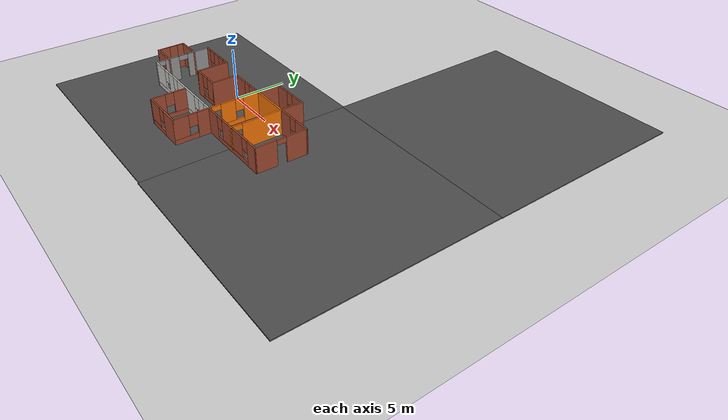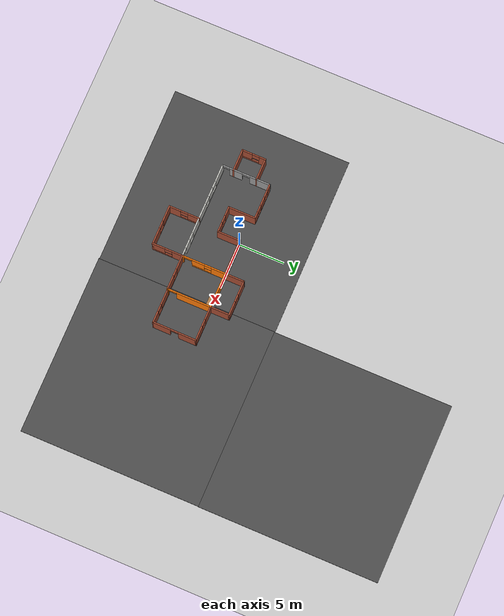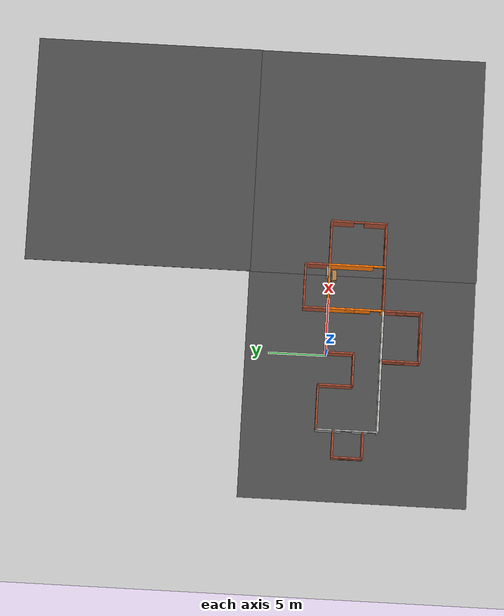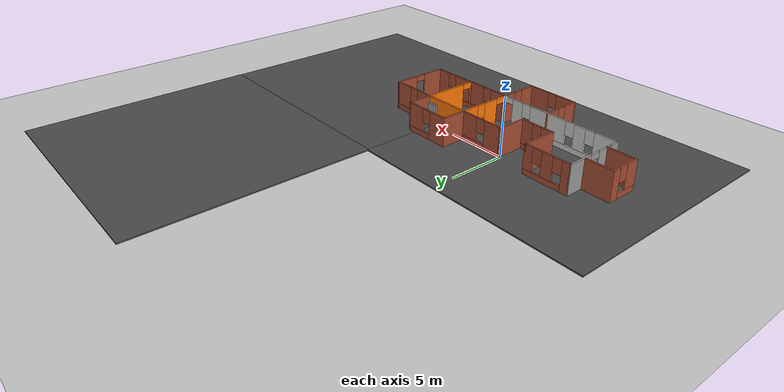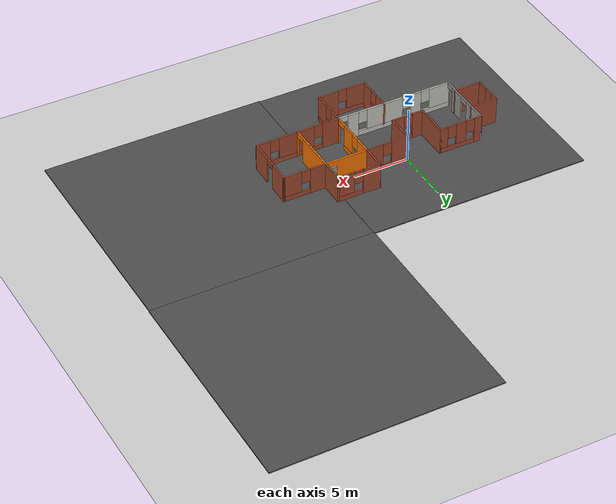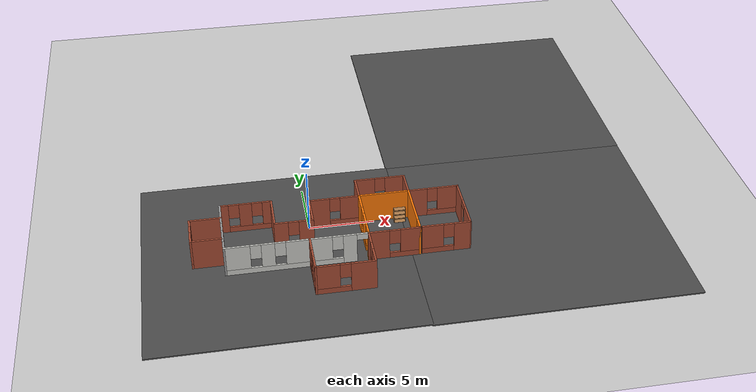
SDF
<sdf version="1.6">
 <world name="default">
  <model name="ground_plane">
   <static>1</static>
   <link name="link">
    <collision name="collision">
     <geometry><plane><normal>0 0 1</normal><size>100 100</size></plane></geometry>
     <surface>
      <contact><collide_bitmask>65535</collide_bitmask></contact>
      <friction><ode><mu>100</mu><mu2>50</mu2></ode></friction>
     </surface>
    </collision>
    <visual name="visual">
     <cast_shadows>0</cast_shadows>
     <geometry><plane><normal>0 0 1</normal><size>100 100</size></plane></geometry>
     <material>
      <script><uri>file://media/materials/scripts/gazebo.material</uri><name>Gazebo/Grey</name></script>
     </material>
    </visual>
   </link>
  </model>
  <model name="Level_1">
   <pose>1.32566 -2.96233 0 0 -0 0</pose>
   <link name="Door_3">
    <collision name="Door_3_Collision">
     <geometry><box><size>0.9 0.17 2</size></box></geometry>
     <pose>0 0 1 0 -0 0</pose>
    </collision>
    <visual name="Door_3_Visual">
     <pose>0 0 1 0 -0 0</pose>
     <geometry><box><size>0.9 0.17 2</size></box></geometry>
     <material>
      <script><uri>file://media/materials/scripts/gazebo.material</uri><name>Gazebo/Grey</name></script>
     </material>
    </visual>
    <pose>5.97774 3.20768 0 0 -0 0</pose>
   </link>
   <link name="Wall_0">
    <pose>-6.00277 3.55 0 0 -0 0</pose>
    <visual name="Wall_0_Visual_0">
     <pose>-1.66505 0 1.25 0 -0 0</pose>
     <geometry><box><size>0.669906 0.15 2.5</size></box></geometry>
     <material>
      <script><uri>file://media/materials/scripts/gazebo.material</uri><name>Gazebo/Bricks</name></script>
      <ambient>1 1 1 1</ambient>
     </material>
     <meta><layer>0</layer></meta>
    </visual>
    <collision name="Wall_0_Collision_0">
     <geometry><box><size>0.669906 0.15 2.5</size></box></geometry>
     <pose>-1.66505 0 1.25 0 -0 0</pose>
    </collision>
    <visual name="Wall_0_Visual_1">
     <pose>0.334953 0 0.25 0 -0 0</pose>
     <geometry><box><size>3.33009 0.15 0.5</size></box></geometry>
     <material>
      <script><uri>file://media/materials/scripts/gazebo.material</uri><name>Gazebo/Bricks</name></script>
      <ambient>1 1 1 1</ambient>
     </material>
     <meta><layer>0</layer></meta>
    </visual>
    <collision name="Wall_0_Collision_1">
     <geometry><box><size>3.33009 0.15 0.5</size></box></geometry>
     <pose>0.334953 0 0.25 0 -0 0</pose>
    </collision>
    <visual name="Wall_0_Visual_2">
     <pose>-0.050625 0 1.5 0 -0 0</pose>
     <geometry><box><size>0.958938 0.15 2</size></box></geometry>
     <material>
      <script><uri>file://media/materials/scripts/gazebo.material</uri><name>Gazebo/Bricks</name></script>
      <ambient>1 1 1 1</ambient>
     </material>
     <meta><layer>0</layer></meta>
    </visual>
    <collision name="Wall_0_Collision_2">
     <geometry><box><size>0.958938 0.15 2</size></box></geometry>
     <pose>-0.050625 0 1.5 0 -0 0</pose>
    </collision>
    <visual name="Wall_0_Visual_3">
     <pose>1.61442 0 1.5 0 -0 0</pose>
     <geometry><box><size>0.771156 0.15 2</size></box></geometry>
     <material>
      <script><uri>file://media/materials/scripts/gazebo.material</uri><name>Gazebo/Bricks</name></script>
      <ambient>1 1 1 1</ambient>
     </material>
     <meta><layer>0</layer></meta>
    </visual>
    <collision name="Wall_0_Collision_3">
     <geometry><box><size>0.771156 0.15 2</size></box></geometry>
     <pose>1.61442 0 1.5 0 -0 0</pose>
    </collision>
    <visual name="Wall_0_Visual_4">
     <pose>-0.930094 0 1.9 0 -0 0</pose>
     <geometry><box><size>0.8 0.15 1.2</size></box></geometry>
     <material>
      <script><uri>file://media/materials/scripts/gazebo.material</uri><name>Gazebo/Bricks</name></script>
      <ambient>1 1 1 1</ambient>
     </material>
     <meta><layer>0</layer></meta>
    </visual>
    <collision name="Wall_0_Collision_4">
     <geometry><box><size>0.8 0.15 1.2</size></box></geometry>
     <pose>-0.930094 0 1.9 0 -0 0</pose>
    </collision>
    <visual name="Wall_0_Visual_5">
     <pose>0.828844 0 1.9 0 -0 0</pose>
     <geometry><box><size>0.8 0.15 1.2</size></box></geometry>
     <material>
      <script><uri>file://media/materials/scripts/gazebo.material</uri><name>Gazebo/Bricks</name></script>
      <ambient>1 1 1 1</ambient>
     </material>
     <meta><layer>0</layer></meta>
    </visual>
    <collision name="Wall_0_Collision_5">
     <geometry><box><size>0.8 0.15 1.2</size></box></geometry>
     <pose>0.828844 0 1.9 0 -0 0</pose>
    </collision>
   </link>
   <link name="Wall_1">
    <collision name="Wall_1_Collision">
     <geometry><box><size>3.121 0.15 2.5</size></box></geometry>
     <pose>0 0 1.25 0 -0 0</pose>
    </collision>
    <visual name="Wall_1_Visual">
     <pose>0 0 1.25 0 -0 0</pose>
     <geometry><box><size>3.121 0.15 2.5</size></box></geometry>
     <material>
      <script><uri>file://media/materials/scripts/gazebo.material</uri><name>Gazebo/Bricks</name></script>
      <ambient>1 1 1 1</ambient>
     </material>
     <meta><layer>0</layer></meta>
    </visual>
    <pose>-4.07777 2.0645 0 0 0 -1.5708</pose>
   </link>
   <link name="Wall_10">
    <pose>-10.3228 0.751 0 0 0 -1.5708</pose>
    <visual name="Wall_10_Visual_0">
     <pose>-0.99483 0 1.25 0 -0 0</pose>
     <geometry><box><size>0.76034 0.15 2.5</size></box></geometry>
     <material>
      <script><uri>file://media/materials/scripts/gazebo.material</uri><name>Gazebo/Bricks</name></script>
      <ambient>1 1 1 1</ambient>
     </material>
     <meta><layer>0</layer></meta>
    </visual>
    <collision name="Wall_10_Collision_0">
     <geometry><box><size>0.76034 0.15 2.5</size></box></geometry>
     <pose>-0.99483 0 1.25 0 -0 0</pose>
    </collision>
    <visual name="Wall_10_Visual_1">
     <pose>0.38017 0 0.25 0 -0 0</pose>
     <geometry><box><size>1.98966 0.15 0.5</size></box></geometry>
     <material>
      <script><uri>file://media/materials/scripts/gazebo.material</uri><name>Gazebo/Bricks</name></script>
      <ambient>1 1 1 1</ambient>
     </material>
     <meta><layer>0</layer></meta>
    </visual>
    <collision name="Wall_10_Collision_1">
     <geometry><box><size>1.98966 0.15 0.5</size></box></geometry>
     <pose>0.38017 0 0.25 0 -0 0</pose>
    </collision>
    <visual name="Wall_10_Visual_2">
     <pose>0.78017 0 1.5 0 -0 0</pose>
     <geometry><box><size>1.18966 0.15 2</size></box></geometry>
     <material>
      <script><uri>file://media/materials/scripts/gazebo.material</uri><name>Gazebo/Bricks</name></script>
      <ambient>1 1 1 1</ambient>
     </material>
     <meta><layer>0</layer></meta>
    </visual>
    <collision name="Wall_10_Collision_2">
     <geometry><box><size>1.18966 0.15 2</size></box></geometry>
     <pose>0.78017 0 1.5 0 -0 0</pose>
    </collision>
    <visual name="Wall_10_Visual_3">
     <pose>-0.21466 0 1.9 0 -0 0</pose>
     <geometry><box><size>0.8 0.15 1.2</size></box></geometry>
     <material>
      <script><uri>file://media/materials/scripts/gazebo.material</uri><name>Gazebo/Bricks</name></script>
      <ambient>1 1 1 1</ambient>
     </material>
     <meta><layer>0</layer></meta>
    </visual>
    <collision name="Wall_10_Collision_3">
     <geometry><box><size>0.8 0.15 1.2</size></box></geometry>
     <pose>-0.21466 0 1.9 0 -0 0</pose>
    </collision>
   </link>
   <link name="Wall_11">
    <collision name="Wall_11_Collision">
     <geometry><box><size>2.5 0.15 2.5</size></box></geometry>
     <pose>0 0 1.25 0 -0 0</pose>
    </collision>
    <visual name="Wall_11_Visual">
     <pose>0 0 1.25 0 -0 0</pose>
     <geometry><box><size>2.5 0.15 2.5</size></box></geometry>
     <material>
      <script><uri>file://media/materials/scripts/gazebo.material</uri><name>Gazebo/Bricks</name></script>
      <ambient>1 1 1 1</ambient>
     </material>
     <meta><layer>0</layer></meta>
    </visual>
    <pose>-9.14777 -0.549 0 0 -0 0</pose>
   </link>
   <link name="Wall_13">
    <pose>4.54723 -1.8 0 0 -0 0</pose>
    <visual name="Wall_13_Visual_0">
     <pose>-1.18832 0 1.25 0 -0 0</pose>
     <geometry><box><size>1.62336 0.15 2.5</size></box></geometry>
     <material>
      <script><uri>file://media/materials/scripts/gazebo.material</uri><name>Gazebo/Bricks</name></script>
      <ambient>1 1 1 1</ambient>
     </material>
     <meta><layer>0</layer></meta>
    </visual>
    <collision name="Wall_13_Collision_0">
     <geometry><box><size>1.62336 0.15 2.5</size></box></geometry>
     <pose>-1.18832 0 1.25 0 -0 0</pose>
    </collision>
    <visual name="Wall_13_Visual_1">
     <pose>0.811681 0 0.25 0 -0 0</pose>
     <geometry><box><size>2.37664 0.15 0.5</size></box></geometry>
     <material>
      <script><uri>file://media/materials/scripts/gazebo.material</uri><name>Gazebo/Bricks</name></script>
      <ambient>1 1 1 1</ambient>
     </material>
     <meta><layer>0</layer></meta>
    </visual>
    <collision name="Wall_13_Collision_1">
     <geometry><box><size>2.37664 0.15 0.5</size></box></geometry>
     <pose>0.811681 0 0.25 0 -0 0</pose>
    </collision>
    <visual name="Wall_13_Visual_2">
     <pose>1.21168 0 1.5 0 -0 0</pose>
     <geometry><box><size>1.57664 0.15 2</size></box></geometry>
     <material>
      <script><uri>file://media/materials/scripts/gazebo.material</uri><name>Gazebo/Bricks</name></script>
      <ambient>1 1 1 1</ambient>
     </material>
     <meta><layer>0</layer></meta>
    </visual>
    <collision name="Wall_13_Collision_2">
     <geometry><box><size>1.57664 0.15 2</size></box></geometry>
     <pose>1.21168 0 1.5 0 -0 0</pose>
    </collision>
    <visual name="Wall_13_Visual_3">
     <pose>0.023361 0 1.9 0 -0 0</pose>
     <geometry><box><size>0.8 0.15 1.2</size></box></geometry>
     <material>
      <script><uri>file://media/materials/scripts/gazebo.material</uri><name>Gazebo/Bricks</name></script>
      <ambient>1 1 1 1</ambient>
     </material>
     <meta><layer>0</layer></meta>
    </visual>
    <collision name="Wall_13_Collision_3">
     <geometry><box><size>0.8 0.15 1.2</size></box></geometry>
     <pose>0.023361 0 1.9 0 -0 0</pose>
    </collision>
   </link>
   <link name="Wall_14">
    <pose>6.47223 0.625 0 0 -0 1.5708</pose>
    <visual name="Wall_14_Visual_0">
     <pose>-2.39992 0 1.25 0 -0 0</pose>
     <geometry><box><size>0.200158 0.15 2.5</size></box></geometry>
     <material>
      <script><uri>file://media/materials/scripts/gazebo.material</uri><name>Gazebo/Grey</name></script>
      <ambient>0.996078 0.47451 0.0196078 1</ambient>
     </material>
     <meta><layer>0</layer></meta>
    </visual>
    <collision name="Wall_14_Collision_0">
     <geometry><box><size>0.200158 0.15 2.5</size></box></geometry>
     <pose>-2.39992 0 1.25 0 -0 0</pose>
    </collision>
    <visual name="Wall_14_Visual_1">
     <pose>0.550079 0 1.25 0 -0 0</pose>
     <geometry><box><size>3.89984 0.15 2.5</size></box></geometry>
     <material>
      <script><uri>file://media/materials/scripts/gazebo.material</uri><name>Gazebo/Grey</name></script>
      <ambient>0.996078 0.47451 0.0196078 1</ambient>
     </material>
     <meta><layer>0</layer></meta>
    </visual>
    <collision name="Wall_14_Collision_1">
     <geometry><box><size>3.89984 0.15 2.5</size></box></geometry>
     <pose>0.550079 0 1.25 0 -0 0</pose>
    </collision>
    <visual name="Wall_14_Visual_2">
     <pose>-1.84984 0 2.25 0 -0 0</pose>
     <geometry><box><size>0.9 0.15 0.5</size></box></geometry>
     <material>
      <script><uri>file://media/materials/scripts/gazebo.material</uri><name>Gazebo/Grey</name></script>
      <ambient>0.996078 0.47451 0.0196078 1</ambient>
     </material>
     <meta><layer>0</layer></meta>
    </visual>
    <collision name="Wall_14_Collision_2">
     <geometry><box><size>0.9 0.15 0.5</size></box></geometry>
     <pose>-1.84984 0 2.25 0 -0 0</pose>
    </collision>
   </link>
   <link name="Wall_15">
    <collision name="Wall_15_Collision">
     <geometry><box><size>4 0.15 2.5</size></box></geometry>
     <pose>0 0 1.25 0 -0 0</pose>
    </collision>
    <visual name="Wall_15_Visual">
     <pose>0 0 1.25 0 -0 0</pose>
     <geometry><box><size>4 0.15 2.5</size></box></geometry>
     <material>
      <script><uri>file://media/materials/scripts/gazebo.material</uri><name>Gazebo/Grey</name></script>
      <ambient>0.996078 0.47451 0.0196078 1</ambient>
     </material>
     <meta><layer>0</layer></meta>
    </visual>
    <pose>4.54723 3.05 0 0 -0 3.14159</pose>
   </link>
   <link name="Wall_16">
    <collision name="Wall_16_Collision">
     <geometry><box><size>2.25 0.15 2.5</size></box></geometry>
     <pose>0 0 1.25 0 -0 0</pose>
    </collision>
    <visual name="Wall_16_Visual">
     <pose>0 0 1.25 0 -0 0</pose>
     <geometry><box><size>2.25 0.15 2.5</size></box></geometry>
     <material>
      <script><uri>file://media/materials/scripts/gazebo.material</uri><name>Gazebo/Bricks</name></script>
      <ambient>1 1 1 1</ambient>
     </material>
     <meta><layer>0</layer></meta>
    </visual>
    <pose>2.62223 4.1 0 0 -0 1.5708</pose>
   </link>
   <link name="Wall_17">
    <pose>4.54723 5.15 0 0 -0 0</pose>
    <visual name="Wall_17_Visual_0">
     <pose>-1.18832 0 1.25 0 -0 0</pose>
     <geometry><box><size>1.62336 0.15 2.5</size></box></geometry>
     <material>
      <script><uri>file://media/materials/scripts/gazebo.material</uri><name>Gazebo/Bricks</name></script>
      <ambient>1 1 1 1</ambient>
     </material>
     <meta><layer>0</layer></meta>
    </visual>
    <collision name="Wall_17_Collision_0">
     <geometry><box><size>1.62336 0.15 2.5</size></box></geometry>
     <pose>-1.18832 0 1.25 0 -0 0</pose>
    </collision>
    <visual name="Wall_17_Visual_1">
     <pose>0.811681 0 0.25 0 -0 0</pose>
     <geometry><box><size>2.37664 0.15 0.5</size></box></geometry>
     <material>
      <script><uri>file://media/materials/scripts/gazebo.material</uri><name>Gazebo/Bricks</name></script>
      <ambient>1 1 1 1</ambient>
     </material>
     <meta><layer>0</layer></meta>
    </visual>
    <collision name="Wall_17_Collision_1">
     <geometry><box><size>2.37664 0.15 0.5</size></box></geometry>
     <pose>0.811681 0 0.25 0 -0 0</pose>
    </collision>
    <visual name="Wall_17_Visual_2">
     <pose>1.21168 0 1.5 0 -0 0</pose>
     <geometry><box><size>1.57664 0.15 2</size></box></geometry>
     <material>
      <script><uri>file://media/materials/scripts/gazebo.material</uri><name>Gazebo/Bricks</name></script>
      <ambient>1 1 1 1</ambient>
     </material>
     <meta><layer>0</layer></meta>
    </visual>
    <collision name="Wall_17_Collision_2">
     <geometry><box><size>1.57664 0.15 2</size></box></geometry>
     <pose>1.21168 0 1.5 0 -0 0</pose>
    </collision>
    <visual name="Wall_17_Visual_3">
     <pose>0.023361 0 1.9 0 -0 0</pose>
     <geometry><box><size>0.8 0.15 1.2</size></box></geometry>
     <material>
      <script><uri>file://media/materials/scripts/gazebo.material</uri><name>Gazebo/Bricks</name></script>
      <ambient>1 1 1 1</ambient>
     </material>
     <meta><layer>0</layer></meta>
    </visual>
    <collision name="Wall_17_Collision_3">
     <geometry><box><size>0.8 0.15 1.2</size></box></geometry>
     <pose>0.023361 0 1.9 0 -0 0</pose>
    </collision>
   </link>
   <link name="Wall_18">
    <collision name="Wall_18_Collision">
     <geometry><box><size>2.25 0.15 2.5</size></box></geometry>
     <pose>0 0 1.25 0 -0 0</pose>
    </collision>
    <visual name="Wall_18_Visual">
     <pose>0 0 1.25 0 -0 0</pose>
     <geometry><box><size>2.25 0.15 2.5</size></box></geometry>
     <material>
      <script><uri>file://media/materials/scripts/gazebo.material</uri><name>Gazebo/Bricks</name></script>
      <ambient>1 1 1 1</ambient>
     </material>
     <meta><layer>0</layer></meta>
    </visual>
    <pose>6.47223 4.1 0 0 0 -1.5708</pose>
   </link>
   <link name="Wall_2">
    <pose>-2.65277 0.579 0 0 -0 0</pose>
    <visual name="Wall_2_Visual_0">
     <pose>-0.961732 0 1.25 0 -0 0</pose>
     <geometry><box><size>1.07654 0.15 2.5</size></box></geometry>
     <material>
      <script><uri>file://media/materials/scripts/gazebo.material</uri><name>Gazebo/Bricks</name></script>
      <ambient>1 1 1 1</ambient>
     </material>
     <meta><layer>0</layer></meta>
    </visual>
    <collision name="Wall_2_Collision_0">
     <geometry><box><size>1.07654 0.15 2.5</size></box></geometry>
     <pose>-0.961732 0 1.25 0 -0 0</pose>
    </collision>
    <visual name="Wall_2_Visual_1">
     <pose>0.538268 0 0.25 0 -0 0</pose>
     <geometry><box><size>1.92346 0.15 0.5</size></box></geometry>
     <material>
      <script><uri>file://media/materials/scripts/gazebo.material</uri><name>Gazebo/Bricks</name></script>
      <ambient>1 1 1 1</ambient>
     </material>
     <meta><layer>0</layer></meta>
    </visual>
    <collision name="Wall_2_Collision_1">
     <geometry><box><size>1.92346 0.15 0.5</size></box></geometry>
     <pose>0.538268 0 0.25 0 -0 0</pose>
    </collision>
    <visual name="Wall_2_Visual_2">
     <pose>0.938268 0 1.5 0 -0 0</pose>
     <geometry><box><size>1.12346 0.15 2</size></box></geometry>
     <material>
      <script><uri>file://media/materials/scripts/gazebo.material</uri><name>Gazebo/Bricks</name></script>
      <ambient>1 1 1 1</ambient>
     </material>
     <meta><layer>0</layer></meta>
    </visual>
    <collision name="Wall_2_Collision_2">
     <geometry><box><size>1.12346 0.15 2</size></box></geometry>
     <pose>0.938268 0 1.5 0 -0 0</pose>
    </collision>
    <visual name="Wall_2_Visual_3">
     <pose>-0.023464 0 1.9 0 -0 0</pose>
     <geometry><box><size>0.8 0.15 1.2</size></box></geometry>
     <material>
      <script><uri>file://media/materials/scripts/gazebo.material</uri><name>Gazebo/Bricks</name></script>
      <ambient>1 1 1 1</ambient>
     </material>
     <meta><layer>0</layer></meta>
    </visual>
    <collision name="Wall_2_Collision_3">
     <geometry><box><size>0.8 0.15 1.2</size></box></geometry>
     <pose>-0.023464 0 1.9 0 -0 0</pose>
    </collision>
   </link>
   <link name="Wall_20">
    <pose>2.62223 -3.475 0 0 0 -1.5708</pose>
    <visual name="Wall_20_Visual_0">
     <pose>-1.12713 0 1.25 0 -0 0</pose>
     <geometry><box><size>1.24575 0.15 2.5</size></box></geometry>
     <material>
      <script><uri>file://media/materials/scripts/gazebo.material</uri><name>Gazebo/Bricks</name></script>
      <ambient>1 1 1 1</ambient>
     </material>
     <meta><layer>0</layer></meta>
    </visual>
    <collision name="Wall_20_Collision_0">
     <geometry><box><size>1.24575 0.15 2.5</size></box></geometry>
     <pose>-1.12713 0 1.25 0 -0 0</pose>
    </collision>
    <visual name="Wall_20_Visual_1">
     <pose>0.622873 0 0.25 0 -0 0</pose>
     <geometry><box><size>2.25425 0.15 0.5</size></box></geometry>
     <material>
      <script><uri>file://media/materials/scripts/gazebo.material</uri><name>Gazebo/Bricks</name></script>
      <ambient>1 1 1 1</ambient>
     </material>
     <meta><layer>0</layer></meta>
    </visual>
    <collision name="Wall_20_Collision_1">
     <geometry><box><size>2.25425 0.15 0.5</size></box></geometry>
     <pose>0.622873 0 0.25 0 -0 0</pose>
    </collision>
    <visual name="Wall_20_Visual_2">
     <pose>1.02287 0 1.5 0 -0 0</pose>
     <geometry><box><size>1.45425 0.15 2</size></box></geometry>
     <material>
      <script><uri>file://media/materials/scripts/gazebo.material</uri><name>Gazebo/Bricks</name></script>
      <ambient>1 1 1 1</ambient>
     </material>
     <meta><layer>0</layer></meta>
    </visual>
    <collision name="Wall_20_Collision_2">
     <geometry><box><size>1.45425 0.15 2</size></box></geometry>
     <pose>1.02287 0 1.5 0 -0 0</pose>
    </collision>
    <visual name="Wall_20_Visual_3">
     <pose>-0.104254 0 1.9 0 -0 0</pose>
     <geometry><box><size>0.8 0.15 1.2</size></box></geometry>
     <material>
      <script><uri>file://media/materials/scripts/gazebo.material</uri><name>Gazebo/Bricks</name></script>
      <ambient>1 1 1 1</ambient>
     </material>
     <meta><layer>0</layer></meta>
    </visual>
    <collision name="Wall_20_Collision_3">
     <geometry><box><size>0.8 0.15 1.2</size></box></geometry>
     <pose>-0.104254 0 1.9 0 -0 0</pose>
    </collision>
   </link>
   <link name="Wall_21">
    <pose>0.447228 -5.15 0 0 -0 3.14159</pose>
    <visual name="Wall_21_Visual_0">
     <pose>-1.31113 0 1.25 0 -0 0</pose>
     <geometry><box><size>1.87773 0.15 2.5</size></box></geometry>
     <material>
      <script><uri>file://media/materials/scripts/gazebo.material</uri><name>Gazebo/Bricks</name></script>
      <ambient>1 1 1 1</ambient>
     </material>
     <meta><layer>0</layer></meta>
    </visual>
    <collision name="Wall_21_Collision_0">
     <geometry><box><size>1.87773 0.15 2.5</size></box></geometry>
     <pose>-1.31113 0 1.25 0 -0 0</pose>
    </collision>
    <visual name="Wall_21_Visual_1">
     <pose>0.938867 0 0.25 0 -0 0</pose>
     <geometry><box><size>2.62227 0.15 0.5</size></box></geometry>
     <material>
      <script><uri>file://media/materials/scripts/gazebo.material</uri><name>Gazebo/Bricks</name></script>
      <ambient>1 1 1 1</ambient>
     </material>
     <meta><layer>0</layer></meta>
    </visual>
    <collision name="Wall_21_Collision_1">
     <geometry><box><size>2.62227 0.15 0.5</size></box></geometry>
     <pose>0.938867 0 0.25 0 -0 0</pose>
    </collision>
    <visual name="Wall_21_Visual_2">
     <pose>1.33887 0 1.5 0 -0 0</pose>
     <geometry><box><size>1.82227 0.15 2</size></box></geometry>
     <material>
      <script><uri>file://media/materials/scripts/gazebo.material</uri><name>Gazebo/Bricks</name></script>
      <ambient>1 1 1 1</ambient>
     </material>
     <meta><layer>0</layer></meta>
    </visual>
    <collision name="Wall_21_Collision_2">
     <geometry><box><size>1.82227 0.15 2</size></box></geometry>
     <pose>1.33887 0 1.5 0 -0 0</pose>
    </collision>
    <visual name="Wall_21_Visual_3">
     <pose>0.027733 0 1.9 0 -0 0</pose>
     <geometry><box><size>0.8 0.15 1.2</size></box></geometry>
     <material>
      <script><uri>file://media/materials/scripts/gazebo.material</uri><name>Gazebo/Bricks</name></script>
      <ambient>1 1 1 1</ambient>
     </material>
     <meta><layer>0</layer></meta>
    </visual>
    <collision name="Wall_21_Collision_3">
     <geometry><box><size>0.8 0.15 1.2</size></box></geometry>
     <pose>0.027733 0 1.9 0 -0 0</pose>
    </collision>
   </link>
   <link name="Wall_22">
    <pose>-1.72777 -3.475 0 0 -0 1.5708</pose>
    <visual name="Wall_22_Visual_0">
     <pose>-1.07564 0 1.25 0 -0 0</pose>
     <geometry><box><size>1.34872 0.15 2.5</size></box></geometry>
     <material>
      <script><uri>file://media/materials/scripts/gazebo.material</uri><name>Gazebo/Bricks</name></script>
      <ambient>1 1 1 1</ambient>
     </material>
     <meta><layer>0</layer></meta>
    </visual>
    <collision name="Wall_22_Collision_0">
     <geometry><box><size>1.34872 0.15 2.5</size></box></geometry>
     <pose>-1.07564 0 1.25 0 -0 0</pose>
    </collision>
    <visual name="Wall_22_Visual_1">
     <pose>0.674359 0 0.25 0 -0 0</pose>
     <geometry><box><size>2.15128 0.15 0.5</size></box></geometry>
     <material>
      <script><uri>file://media/materials/scripts/gazebo.material</uri><name>Gazebo/Bricks</name></script>
      <ambient>1 1 1 1</ambient>
     </material>
     <meta><layer>0</layer></meta>
    </visual>
    <collision name="Wall_22_Collision_1">
     <geometry><box><size>2.15128 0.15 0.5</size></box></geometry>
     <pose>0.674359 0 0.25 0 -0 0</pose>
    </collision>
    <visual name="Wall_22_Visual_2">
     <pose>1.07436 0 1.5 0 -0 0</pose>
     <geometry><box><size>1.35128 0.15 2</size></box></geometry>
     <material>
      <script><uri>file://media/materials/scripts/gazebo.material</uri><name>Gazebo/Bricks</name></script>
      <ambient>1 1 1 1</ambient>
     </material>
     <meta><layer>0</layer></meta>
    </visual>
    <collision name="Wall_22_Collision_2">
     <geometry><box><size>1.35128 0.15 2</size></box></geometry>
     <pose>1.07436 0 1.5 0 -0 0</pose>
    </collision>
    <visual name="Wall_22_Visual_3">
     <pose>-0.001282 0 1.9 0 -0 0</pose>
     <geometry><box><size>0.8 0.15 1.2</size></box></geometry>
     <material>
      <script><uri>file://media/materials/scripts/gazebo.material</uri><name>Gazebo/Bricks</name></script>
      <ambient>1 1 1 1</ambient>
     </material>
     <meta><layer>0</layer></meta>
    </visual>
    <collision name="Wall_22_Collision_3">
     <geometry><box><size>0.8 0.15 1.2</size></box></geometry>
     <pose>-0.001282 0 1.9 0 -0 0</pose>
    </collision>
   </link>
   <link name="Wall_24">
    <pose>8.39723 3.05 0 0 -0 0</pose>
    <visual name="Wall_24_Visual_0">
     <pose>-1.23126 0 1.25 0 -0 0</pose>
     <geometry><box><size>1.53749 0.15 2.5</size></box></geometry>
     <material>
      <script><uri>file://media/materials/scripts/gazebo.material</uri><name>Gazebo/Bricks</name></script>
      <ambient>1 1 1 1</ambient>
     </material>
     <meta><layer>0</layer></meta>
    </visual>
    <collision name="Wall_24_Collision_0">
     <geometry><box><size>1.53749 0.15 2.5</size></box></geometry>
     <pose>-1.23126 0 1.25 0 -0 0</pose>
    </collision>
    <visual name="Wall_24_Visual_1">
     <pose>0.768744 0 0.25 0 -0 0</pose>
     <geometry><box><size>2.46251 0.15 0.5</size></box></geometry>
     <material>
      <script><uri>file://media/materials/scripts/gazebo.material</uri><name>Gazebo/Bricks</name></script>
      <ambient>1 1 1 1</ambient>
     </material>
     <meta><layer>0</layer></meta>
    </visual>
    <collision name="Wall_24_Collision_1">
     <geometry><box><size>2.46251 0.15 0.5</size></box></geometry>
     <pose>0.768744 0 0.25 0 -0 0</pose>
    </collision>
    <visual name="Wall_24_Visual_2">
     <pose>1.16874 0 1.5 0 -0 0</pose>
     <geometry><box><size>1.66251 0.15 2</size></box></geometry>
     <material>
      <script><uri>file://media/materials/scripts/gazebo.material</uri><name>Gazebo/Bricks</name></script>
      <ambient>1 1 1 1</ambient>
     </material>
     <meta><layer>0</layer></meta>
    </visual>
    <collision name="Wall_24_Collision_2">
     <geometry><box><size>1.66251 0.15 2</size></box></geometry>
     <pose>1.16874 0 1.5 0 -0 0</pose>
    </collision>
    <visual name="Wall_24_Visual_3">
     <pose>-0.062511 0 1.9 0 -0 0</pose>
     <geometry><box><size>0.8 0.15 1.2</size></box></geometry>
     <material>
      <script><uri>file://media/materials/scripts/gazebo.material</uri><name>Gazebo/Bricks</name></script>
      <ambient>1 1 1 1</ambient>
     </material>
     <meta><layer>0</layer></meta>
    </visual>
    <collision name="Wall_24_Collision_3">
     <geometry><box><size>0.8 0.15 1.2</size></box></geometry>
     <pose>-0.062511 0 1.9 0 -0 0</pose>
    </collision>
   </link>
   <link name="Wall_25">
    <pose>10.3047 0.6445 0 0 0 -1.57807</pose>
    <visual name="Wall_25_Visual_0">
     <pose>-1.46301 0 1.25 0 -0 0</pose>
     <geometry><box><size>2.03517 0.15 2.5</size></box></geometry>
     <material>
      <script><uri>file://media/materials/scripts/gazebo.material</uri><name>Gazebo/Bricks</name></script>
      <ambient>1 1 1 1</ambient>
     </material>
     <meta><layer>0</layer></meta>
    </visual>
    <collision name="Wall_25_Collision_0">
     <geometry><box><size>2.03517 0.15 2.5</size></box></geometry>
     <pose>-1.46301 0 1.25 0 -0 0</pose>
    </collision>
    <visual name="Wall_25_Visual_1">
     <pose>1.46759 0 1.25 0 -0 0</pose>
     <geometry><box><size>2.02603 0.15 2.5</size></box></geometry>
     <material>
      <script><uri>file://media/materials/scripts/gazebo.material</uri><name>Gazebo/Bricks</name></script>
      <ambient>1 1 1 1</ambient>
     </material>
     <meta><layer>0</layer></meta>
    </visual>
    <collision name="Wall_25_Collision_1">
     <geometry><box><size>2.02603 0.15 2.5</size></box></geometry>
     <pose>1.46759 0 1.25 0 -0 0</pose>
    </collision>
    <visual name="Wall_25_Visual_2">
     <pose>0.004573 0 2.25 0 -0 0</pose>
     <geometry><box><size>0.9 0.15 0.5</size></box></geometry>
     <material>
      <script><uri>file://media/materials/scripts/gazebo.material</uri><name>Gazebo/Bricks</name></script>
      <ambient>1 1 1 1</ambient>
     </material>
     <meta><layer>0</layer></meta>
    </visual>
    <collision name="Wall_25_Collision_2">
     <geometry><box><size>0.9 0.15 0.5</size></box></geometry>
     <pose>0.004573 0 2.25 0 -0 0</pose>
    </collision>
   </link>
   <link name="Wall_26">
    <pose>8.48723 -1.761 0 0 -0 3.14159</pose>
    <visual name="Wall_26_Visual_0">
     <pose>-1.21964 0 1.25 0 -0 0</pose>
     <geometry><box><size>1.31072 0.15 2.5</size></box></geometry>
     <material>
      <script><uri>file://media/materials/scripts/gazebo.material</uri><name>Gazebo/Bricks</name></script>
      <ambient>1 1 1 1</ambient>
     </material>
     <meta><layer>0</layer></meta>
    </visual>
    <collision name="Wall_26_Collision_0">
     <geometry><box><size>1.31072 0.15 2.5</size></box></geometry>
     <pose>-1.21964 0 1.25 0 -0 0</pose>
    </collision>
    <visual name="Wall_26_Visual_1">
     <pose>0.655361 0 0.25 0 -0 0</pose>
     <geometry><box><size>2.43928 0.15 0.5</size></box></geometry>
     <material>
      <script><uri>file://media/materials/scripts/gazebo.material</uri><name>Gazebo/Bricks</name></script>
      <ambient>1 1 1 1</ambient>
     </material>
     <meta><layer>0</layer></meta>
    </visual>
    <collision name="Wall_26_Collision_1">
     <geometry><box><size>2.43928 0.15 0.5</size></box></geometry>
     <pose>0.655361 0 0.25 0 -0 0</pose>
    </collision>
    <visual name="Wall_26_Visual_2">
     <pose>1.05536 0 1.5 0 -0 0</pose>
     <geometry><box><size>1.63928 0.15 2</size></box></geometry>
     <material>
      <script><uri>file://media/materials/scripts/gazebo.material</uri><name>Gazebo/Bricks</name></script>
      <ambient>1 1 1 1</ambient>
     </material>
     <meta><layer>0</layer></meta>
    </visual>
    <collision name="Wall_26_Collision_2">
     <geometry><box><size>1.63928 0.15 2</size></box></geometry>
     <pose>1.05536 0 1.5 0 -0 0</pose>
    </collision>
    <visual name="Wall_26_Visual_3">
     <pose>-0.164277 0 1.9 0 -0 0</pose>
     <geometry><box><size>0.8 0.15 1.2</size></box></geometry>
     <material>
      <script><uri>file://media/materials/scripts/gazebo.material</uri><name>Gazebo/Bricks</name></script>
      <ambient>1 1 1 1</ambient>
     </material>
     <meta><layer>0</layer></meta>
    </visual>
    <collision name="Wall_26_Collision_3">
     <geometry><box><size>0.8 0.15 1.2</size></box></geometry>
     <pose>-0.164277 0 1.9 0 -0 0</pose>
    </collision>
   </link>
   <link name="Wall_3">
    <collision name="Wall_3_Collision">
     <geometry><box><size>2.621 0.15 2.5</size></box></geometry>
     <pose>0 0 1.25 0 -0 0</pose>
    </collision>
    <visual name="Wall_3_Visual">
     <pose>0 0 1.25 0 -0 0</pose>
     <geometry><box><size>2.621 0.15 2.5</size></box></geometry>
     <material>
      <script><uri>file://media/materials/scripts/gazebo.material</uri><name>Gazebo/Bricks</name></script>
      <ambient>1 1 1 1</ambient>
     </material>
     <meta><layer>0</layer></meta>
    </visual>
    <pose>-1.22777 1.8145 0 0 -0 1.5708</pose>
   </link>
   <link name="Wall_4">
    <pose>0.697228 3.05 0 0 -0 0</pose>
    <visual name="Wall_4_Visual_0">
     <pose>-1.18056 0 1.25 0 -0 0</pose>
     <geometry><box><size>1.63888 0.15 2.5</size></box></geometry>
     <material>
      <script><uri>file://media/materials/scripts/gazebo.material</uri><name>Gazebo/Bricks</name></script>
      <ambient>1 1 1 1</ambient>
     </material>
     <meta><layer>0</layer></meta>
    </visual>
    <collision name="Wall_4_Collision_0">
     <geometry><box><size>1.63888 0.15 2.5</size></box></geometry>
     <pose>-1.18056 0 1.25 0 -0 0</pose>
    </collision>
    <visual name="Wall_4_Visual_1">
     <pose>0.819438 0 0.25 0 -0 0</pose>
     <geometry><box><size>2.36112 0.15 0.5</size></box></geometry>
     <material>
      <script><uri>file://media/materials/scripts/gazebo.material</uri><name>Gazebo/Bricks</name></script>
      <ambient>1 1 1 1</ambient>
     </material>
     <meta><layer>0</layer></meta>
    </visual>
    <collision name="Wall_4_Collision_1">
     <geometry><box><size>2.36112 0.15 0.5</size></box></geometry>
     <pose>0.819438 0 0.25 0 -0 0</pose>
    </collision>
    <visual name="Wall_4_Visual_2">
     <pose>1.21944 0 1.5 0 -0 0</pose>
     <geometry><box><size>1.56112 0.15 2</size></box></geometry>
     <material>
      <script><uri>file://media/materials/scripts/gazebo.material</uri><name>Gazebo/Bricks</name></script>
      <ambient>1 1 1 1</ambient>
     </material>
     <meta><layer>0</layer></meta>
    </visual>
    <collision name="Wall_4_Collision_2">
     <geometry><box><size>1.56112 0.15 2</size></box></geometry>
     <pose>1.21944 0 1.5 0 -0 0</pose>
    </collision>
    <visual name="Wall_4_Visual_3">
     <pose>0.038876 0 1.9 0 -0 0</pose>
     <geometry><box><size>0.8 0.15 1.2</size></box></geometry>
     <material>
      <script><uri>file://media/materials/scripts/gazebo.material</uri><name>Gazebo/Bricks</name></script>
      <ambient>1 1 1 1</ambient>
     </material>
     <meta><layer>0</layer></meta>
    </visual>
    <collision name="Wall_4_Collision_3">
     <geometry><box><size>0.8 0.15 1.2</size></box></geometry>
     <pose>0.038876 0 1.9 0 -0 0</pose>
    </collision>
   </link>
   <link name="Wall_5">
    <pose>2.62223 0.625 0 0 0 -1.5708</pose>
    <visual name="Wall_5_Visual_0">
     <pose>-1.68598 0 1.25 0 -0 0</pose>
     <geometry><box><size>1.62804 0.15 2.5</size></box></geometry>
     <material>
      <script><uri>file://media/materials/scripts/gazebo.material</uri><name>Gazebo/Grey</name></script>
      <ambient>0.996078 0.47451 0.0196078 1</ambient>
     </material>
     <meta><layer>0</layer></meta>
    </visual>
    <collision name="Wall_5_Collision_0">
     <geometry><box><size>1.62804 0.15 2.5</size></box></geometry>
     <pose>-1.68598 0 1.25 0 -0 0</pose>
    </collision>
    <visual name="Wall_5_Visual_1">
     <pose>2.36474 0 1.25 0 -0 0</pose>
     <geometry><box><size>0.270516 0.15 2.5</size></box></geometry>
     <material>
      <script><uri>file://media/materials/scripts/gazebo.material</uri><name>Gazebo/Grey</name></script>
      <ambient>0.996078 0.47451 0.0196078 1</ambient>
     </material>
     <meta><layer>0</layer></meta>
    </visual>
    <collision name="Wall_5_Collision_1">
     <geometry><box><size>0.270516 0.15 2.5</size></box></geometry>
     <pose>2.36474 0 1.25 0 -0 0</pose>
    </collision>
    <visual name="Wall_5_Visual_2">
     <pose>0.228764 0 0.25 0 -0 0</pose>
     <geometry><box><size>2.20144 0.15 0.5</size></box></geometry>
     <material>
      <script><uri>file://media/materials/scripts/gazebo.material</uri><name>Gazebo/Grey</name></script>
      <ambient>0.996078 0.47451 0.0196078 1</ambient>
     </material>
     <meta><layer>0</layer></meta>
    </visual>
    <collision name="Wall_5_Collision_2">
     <geometry><box><size>2.20144 0.15 0.5</size></box></geometry>
     <pose>0.228764 0 0.25 0 -0 0</pose>
    </collision>
    <visual name="Wall_5_Visual_3">
     <pose>0.628764 0 1.5 0 -0 0</pose>
     <geometry><box><size>1.40144 0.15 2</size></box></geometry>
     <material>
      <script><uri>file://media/materials/scripts/gazebo.material</uri><name>Gazebo/Grey</name></script>
      <ambient>0.996078 0.47451 0.0196078 1</ambient>
     </material>
     <meta><layer>0</layer></meta>
    </visual>
    <collision name="Wall_5_Collision_3">
     <geometry><box><size>1.40144 0.15 2</size></box></geometry>
     <pose>0.628764 0 1.5 0 -0 0</pose>
    </collision>
    <visual name="Wall_5_Visual_4">
     <pose>-0.471957 0 1.9 0 -0 0</pose>
     <geometry><box><size>0.8 0.15 1.2</size></box></geometry>
     <material>
      <script><uri>file://media/materials/scripts/gazebo.material</uri><name>Gazebo/Grey</name></script>
      <ambient>0.996078 0.47451 0.0196078 1</ambient>
     </material>
     <meta><layer>0</layer></meta>
    </visual>
    <collision name="Wall_5_Collision_4">
     <geometry><box><size>0.8 0.15 1.2</size></box></geometry>
     <pose>-0.471957 0 1.9 0 -0 0</pose>
    </collision>
    <visual name="Wall_5_Visual_5">
     <pose>1.77948 0 2.25 0 -0 0</pose>
     <geometry><box><size>0.9 0.15 0.5</size></box></geometry>
     <material>
      <script><uri>file://media/materials/scripts/gazebo.material</uri><name>Gazebo/Grey</name></script>
      <ambient>0.996078 0.47451 0.0196078 1</ambient>
     </material>
     <meta><layer>0</layer></meta>
    </visual>
    <collision name="Wall_5_Collision_5">
     <geometry><box><size>0.9 0.15 0.5</size></box></geometry>
     <pose>1.77948 0 2.25 0 -0 0</pose>
    </collision>
   </link>
   <link name="Wall_6">
    <pose>-2.67777 -1.8 0 0 -0 3.14159</pose>
    <visual name="Wall_6_Visual_0">
     <pose>-5.3406 0 1.25 0 -0 0</pose>
     <geometry><box><size>0.068795 0.15 2.5</size></box></geometry>
     <material>
      <script><uri>file://media/materials/scripts/gazebo.material</uri><name>Gazebo/CeilingTiled</name></script>
      <ambient>1 1 1 1</ambient>
     </material>
     <meta><layer>0</layer></meta>
    </visual>
    <collision name="Wall_6_Collision_0">
     <geometry><box><size>0.068795 0.15 2.5</size></box></geometry>
     <pose>-5.3406 0 1.25 0 -0 0</pose>
    </collision>
    <visual name="Wall_6_Visual_1">
     <pose>-3.89897 0 1.25 0 -0 0</pose>
     <geometry><box><size>1.01447 0.15 2.5</size></box></geometry>
     <material>
      <script><uri>file://media/materials/scripts/gazebo.material</uri><name>Gazebo/CeilingTiled</name></script>
      <ambient>1 1 1 1</ambient>
     </material>
     <meta><layer>0</layer></meta>
    </visual>
    <collision name="Wall_6_Collision_1">
     <geometry><box><size>1.01447 0.15 2.5</size></box></geometry>
     <pose>-3.89897 0 1.25 0 -0 0</pose>
    </collision>
    <visual name="Wall_6_Visual_2">
     <pose>0.991635 0 0.25 0 -0 0</pose>
     <geometry><box><size>8.76673 0.15 0.5</size></box></geometry>
     <material>
      <script><uri>file://media/materials/scripts/gazebo.material</uri><name>Gazebo/CeilingTiled</name></script>
      <ambient>1 1 1 1</ambient>
     </material>
     <meta><layer>0</layer></meta>
    </visual>
    <collision name="Wall_6_Collision_2">
     <geometry><box><size>8.76673 0.15 0.5</size></box></geometry>
     <pose>0.991635 0 0.25 0 -0 0</pose>
    </collision>
    <visual name="Wall_6_Visual_3">
     <pose>-0.881005 0 1.5 0 -0 0</pose>
     <geometry><box><size>3.42145 0.15 2</size></box></geometry>
     <material>
      <script><uri>file://media/materials/scripts/gazebo.material</uri><name>Gazebo/CeilingTiled</name></script>
      <ambient>1 1 1 1</ambient>
     </material>
     <meta><layer>0</layer></meta>
    </visual>
    <collision name="Wall_6_Collision_3">
     <geometry><box><size>3.42145 0.15 2</size></box></geometry>
     <pose>-0.881005 0 1.5 0 -0 0</pose>
    </collision>
    <visual name="Wall_6_Visual_4">
     <pose>2.12678 0 1.5 0 -0 0</pose>
     <geometry><box><size>0.994117 0.15 2</size></box></geometry>
     <material>
      <script><uri>file://media/materials/scripts/gazebo.material</uri><name>Gazebo/CeilingTiled</name></script>
      <ambient>1 1 1 1</ambient>
     </material>
     <meta><layer>0</layer></meta>
    </visual>
    <collision name="Wall_6_Collision_4">
     <geometry><box><size>0.994117 0.15 2</size></box></geometry>
     <pose>2.12678 0 1.5 0 -0 0</pose>
    </collision>
    <visual name="Wall_6_Visual_5">
     <pose>4.39942 0 1.5 0 -0 0</pose>
     <geometry><box><size>1.95116 0.15 2</size></box></geometry>
     <material>
      <script><uri>file://media/materials/scripts/gazebo.material</uri><name>Gazebo/CeilingTiled</name></script>
      <ambient>1 1 1 1</ambient>
     </material>
     <meta><layer>0</layer></meta>
    </visual>
    <collision name="Wall_6_Collision_5">
     <geometry><box><size>1.95116 0.15 2</size></box></geometry>
     <pose>4.39942 0 1.5 0 -0 0</pose>
    </collision>
    <visual name="Wall_6_Visual_6">
     <pose>-2.99173 0 1.9 0 -0 0</pose>
     <geometry><box><size>0.8 0.15 1.2</size></box></geometry>
     <material>
      <script><uri>file://media/materials/scripts/gazebo.material</uri><name>Gazebo/CeilingTiled</name></script>
      <ambient>1 1 1 1</ambient>
     </material>
     <meta><layer>0</layer></meta>
    </visual>
    <collision name="Wall_6_Collision_6">
     <geometry><box><size>0.8 0.15 1.2</size></box></geometry>
     <pose>-2.99173 0 1.9 0 -0 0</pose>
    </collision>
    <visual name="Wall_6_Visual_7">
     <pose>1.22972 0 1.9 0 -0 0</pose>
     <geometry><box><size>0.8 0.15 1.2</size></box></geometry>
     <material>
      <script><uri>file://media/materials/scripts/gazebo.material</uri><name>Gazebo/CeilingTiled</name></script>
      <ambient>1 1 1 1</ambient>
     </material>
     <meta><layer>0</layer></meta>
    </visual>
    <collision name="Wall_6_Collision_7">
     <geometry><box><size>0.8 0.15 1.2</size></box></geometry>
     <pose>1.22972 0 1.9 0 -0 0</pose>
    </collision>
    <visual name="Wall_6_Visual_8">
     <pose>3.02384 0 1.9 0 -0 0</pose>
     <geometry><box><size>0.8 0.15 1.2</size></box></geometry>
     <material>
      <script><uri>file://media/materials/scripts/gazebo.material</uri><name>Gazebo/CeilingTiled</name></script>
      <ambient>1 1 1 1</ambient>
     </material>
     <meta><layer>0</layer></meta>
    </visual>
    <collision name="Wall_6_Collision_8">
     <geometry><box><size>0.8 0.15 1.2</size></box></geometry>
     <pose>3.02384 0 1.9 0 -0 0</pose>
    </collision>
    <visual name="Wall_6_Visual_9">
     <pose>-4.85621 0 2.25 0 -0 0</pose>
     <geometry><box><size>0.9 0.15 0.5</size></box></geometry>
     <material>
      <script><uri>file://media/materials/scripts/gazebo.material</uri><name>Gazebo/CeilingTiled</name></script>
      <ambient>1 1 1 1</ambient>
     </material>
     <meta><layer>0</layer></meta>
    </visual>
    <collision name="Wall_6_Collision_9">
     <geometry><box><size>0.9 0.15 0.5</size></box></geometry>
     <pose>-4.85621 0 2.25 0 -0 0</pose>
    </collision>
   </link>
   <link name="Wall_7">
    <pose>-7.97777 0.875 0 0 -0 1.5708</pose>
    <visual name="Wall_7_Visual_0">
     <pose>-2.74745 0 1.25 0 -0 0</pose>
     <geometry><box><size>0.005101 0.15 2.5</size></box></geometry>
     <material>
      <script><uri>file://media/materials/scripts/gazebo.material</uri><name>Gazebo/Grey</name></script>
      <ambient>1 1 1 1</ambient>
     </material>
     <meta><layer>0</layer></meta>
    </visual>
    <collision name="Wall_7_Collision_0">
     <geometry><box><size>0.005101 0.15 2.5</size></box></geometry>
     <pose>-2.74745 0 1.25 0 -0 0</pose>
    </collision>
    <visual name="Wall_7_Visual_1">
     <pose>-1.14201 0 1.25 0 -0 0</pose>
     <geometry><box><size>1.40578 0.15 2.5</size></box></geometry>
     <material>
      <script><uri>file://media/materials/scripts/gazebo.material</uri><name>Gazebo/Grey</name></script>
      <ambient>1 1 1 1</ambient>
     </material>
     <meta><layer>0</layer></meta>
    </visual>
    <collision name="Wall_7_Collision_1">
     <geometry><box><size>1.40578 0.15 2.5</size></box></geometry>
     <pose>-1.14201 0 1.25 0 -0 0</pose>
    </collision>
    <visual name="Wall_7_Visual_2">
     <pose>1.60544 0 1.25 0 -0 0</pose>
     <geometry><box><size>2.28912 0.15 2.5</size></box></geometry>
     <material>
      <script><uri>file://media/materials/scripts/gazebo.material</uri><name>Gazebo/Grey</name></script>
      <ambient>1 1 1 1</ambient>
     </material>
     <meta><layer>0</layer></meta>
    </visual>
    <collision name="Wall_7_Collision_2">
     <geometry><box><size>2.28912 0.15 2.5</size></box></geometry>
     <pose>1.60544 0 1.25 0 -0 0</pose>
    </collision>
    <visual name="Wall_7_Visual_3">
     <pose>-2.2949 0 2.25 0 -0 0</pose>
     <geometry><box><size>0.9 0.15 0.5</size></box></geometry>
     <material>
      <script><uri>file://media/materials/scripts/gazebo.material</uri><name>Gazebo/Grey</name></script>
      <ambient>1 1 1 1</ambient>
     </material>
     <meta><layer>0</layer></meta>
    </visual>
    <collision name="Wall_7_Collision_3">
     <geometry><box><size>0.9 0.15 0.5</size></box></geometry>
     <pose>-2.2949 0 2.25 0 -0 0</pose>
    </collision>
    <visual name="Wall_7_Visual_4">
     <pose>0.010884 0 2.25 0 -0 0</pose>
     <geometry><box><size>0.9 0.15 0.5</size></box></geometry>
     <material>
      <script><uri>file://media/materials/scripts/gazebo.material</uri><name>Gazebo/Grey</name></script>
      <ambient>1 1 1 1</ambient>
     </material>
     <meta><layer>0</layer></meta>
    </visual>
    <collision name="Wall_7_Collision_4">
     <geometry><box><size>0.9 0.15 0.5</size></box></geometry>
     <pose>0.010884 0 2.25 0 -0 0</pose>
    </collision>
   </link>
   <link name="Wall_9">
    <collision name="Wall_9_Collision">
     <geometry><box><size>2.5 0.15 2.5</size></box></geometry>
     <pose>0 0 1.25 0 -0 0</pose>
    </collision>
    <visual name="Wall_9_Visual">
     <pose>0 0 1.25 0 -0 0</pose>
     <geometry><box><size>2.5 0.15 2.5</size></box></geometry>
     <material>
      <script><uri>file://media/materials/scripts/gazebo.material</uri><name>Gazebo/Bricks</name></script>
      <ambient>1 1 1 1</ambient>
     </material>
     <meta><layer>0</layer></meta>
    </visual>
    <pose>-9.14777 2.051 0 0 -0 3.14159</pose>
   </link>
   <static>1</static>
  </model>
  <model name="bookshelf">
   <static>1</static>
   <link name="link">
    <inertial><mass>1</mass></inertial>
    <collision name="back">
     <pose>0 0.005 0.6 0 -0 0</pose>
     <geometry><box><size>0.9 0.01 1.2</size></box></geometry>
    </collision>
    <visual name="visual1">
     <pose>0 0.005 0.6 0 -0 0</pose>
     <geometry><box><size>0.9 0.01 1.2</size></box></geometry>
     <material>
      <script><uri>file://media/materials/scripts/gazebo.material</uri><name>Gazebo/Wood</name></script>
     </material>
    </visual>
    <collision name="left_side">
     <pose>0.45 -0.195 0.6 0 -0 0</pose>
     <geometry><box><size>0.02 0.4 1.2</size></box></geometry>
    </collision>
    <visual name="visual2">
     <pose>0.45 -0.195 0.6 0 -0 0</pose>
     <geometry><box><size>0.02 0.4 1.2</size></box></geometry>
     <material>
      <script><uri>file://media/materials/scripts/gazebo.material</uri><name>Gazebo/Wood</name></script>
     </material>
    </visual>
    <collision name="right_side">
     <pose>-0.45 -0.195 0.6 0 -0 0</pose>
     <geometry><box><size>0.02 0.4 1.2</size></box></geometry>
    </collision>
    <visual name="visual3">
     <pose>-0.45 -0.195 0.6 0 -0 0</pose>
     <geometry><box><size>0.02 0.4 1.2</size></box></geometry>
     <material>
      <script><uri>file://media/materials/scripts/gazebo.material</uri><name>Gazebo/Wood</name></script>
     </material>
    </visual>
    <collision name="bottom">
     <pose>0 -0.195 0.03 0 -0 0</pose>
     <geometry><box><size>0.88 0.4 0.06</size></box></geometry>
    </collision>
    <visual name="visual4">
     <pose>0 -0.195 0.03 0 -0 0</pose>
     <geometry><box><size>0.88 0.4 0.06</size></box></geometry>
     <material>
      <script><uri>file://media/materials/scripts/gazebo.material</uri><name>Gazebo/Wood</name></script>
     </material>
    </visual>
    <collision name="top">
     <pose>0 -0.195 1.19 0 -0 0</pose>
     <geometry><box><size>0.88 0.4 0.02</size></box></geometry>
    </collision>
    <visual name="visual5">
     <pose>0 -0.195 1.19 0 -0 0</pose>
     <geometry><box><size>0.88 0.4 0.02</size></box></geometry>
     <material>
      <script><uri>file://media/materials/scripts/gazebo.material</uri><name>Gazebo/Wood</name></script>
     </material>
    </visual>
    <collision name="low_shelf">
     <pose>0 -0.195 0.43 0 -0 0</pose>
     <geometry><box><size>0.88 0.4 0.02</size></box></geometry>
    </collision>
    <visual name="visual6">
     <pose>0 -0.195 0.43 0 -0 0</pose>
     <geometry><box><size>0.88 0.4 0.02</size></box></geometry>
     <material>
      <script><uri>file://media/materials/scripts/gazebo.material</uri><name>Gazebo/Wood</name></script>
     </material>
    </visual>
    <collision name="high_shelf">
     <pose>0 -0.195 0.8 0 -0 0</pose>
     <geometry><box><size>0.88 0.4 0.02</size></box></geometry>
    </collision>
    <visual name="visual7">
     <pose>0 -0.195 0.8 0 -0 0</pose>
     <geometry><box><size>0.88 0.4 0.02</size></box></geometry>
     <material>
      <script><uri>file://media/materials/scripts/gazebo.material</uri><name>Gazebo/Wood</name></script>
     </material>
    </visual>
   </link>
   <pose>7.01962 -0.178814 0 0 -0 0</pose>
  </model>
  <model name="asphalt_plane">
   <static>1</static>
   <link name="link">
    <collision name="collision"><geometry><box><size>20 20 0.1</size></box></geometry></collision>
    <visual name="visual">
     <cast_shadows>0</cast_shadows>
     <geometry><box><size>20 20 0.1</size></box></geometry>
     <material>
      <script>
       <uri>model://asphalt_plane/materials/scripts</uri>
       <uri>model://asphalt_plane/materials/textures</uri>
       <name>vrc/asphalt</name>
      </script>
     </material>
    </visual>
   </link>
   <pose>-2.78394 -2.8847 0 0 -0 0</pose>
  </model>
  <model name="asphalt_plane_0">
   <static>1</static>
   <link name="link">
    <collision name="collision"><geometry><box><size>20 20 0.1</size></box></geometry></collision>
    <visual name="visual">
     <cast_shadows>0</cast_shadows>
     <geometry><box><size>20 20 0.1</size></box></geometry>
     <material>
      <script>
       <uri>model://asphalt_plane/materials/scripts</uri>
       <uri>model://asphalt_plane/materials/textures</uri>
       <name>vrc/asphalt</name>
      </script>
     </material>
    </visual>
   </link>
   <pose>17.1247 -2.96156 0 0 -0 0</pose>
  </model>
  <model name="asphalt_plane_2">
   <static>1</static>
   <link name="link">
    <collision name="collision"><geometry><box><size>20 20 0.1</size></box></geometry></collision>
    <visual name="visual">
     <cast_shadows>0</cast_shadows>
     <geometry><box><size>20 20 0.1</size></box></geometry>
     <material>
      <script>
       <uri>model://asphalt_plane/materials/scripts</uri>
       <uri>model://asphalt_plane/materials/textures</uri>
       <name>vrc/asphalt</name>
      </script>
     </material>
    </visual>
   </link>
   <pose>17.1542 17.012 0 0 -0 0</pose>
  </model>
 </world>
</sdf>
